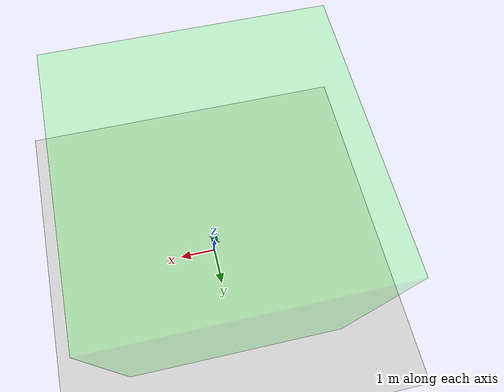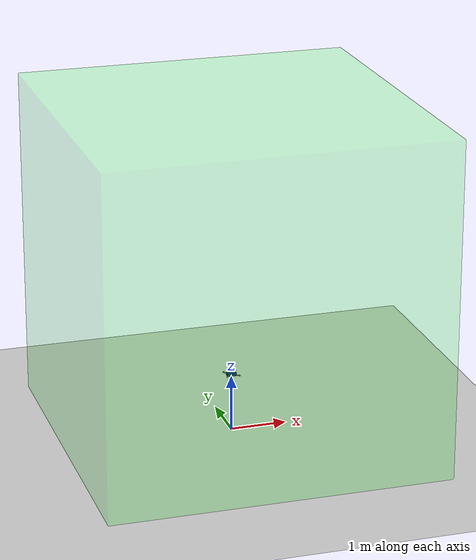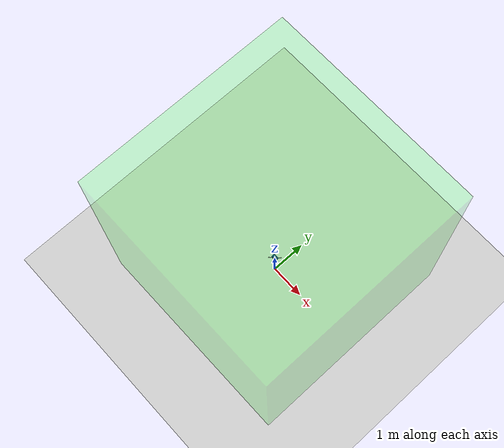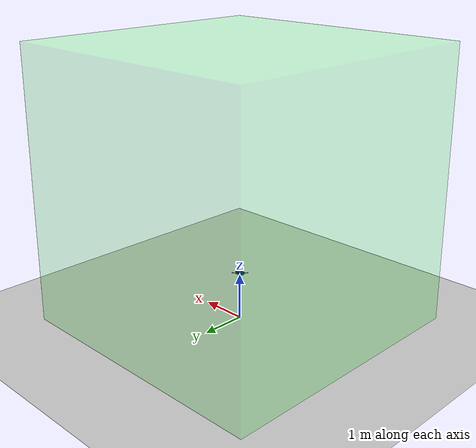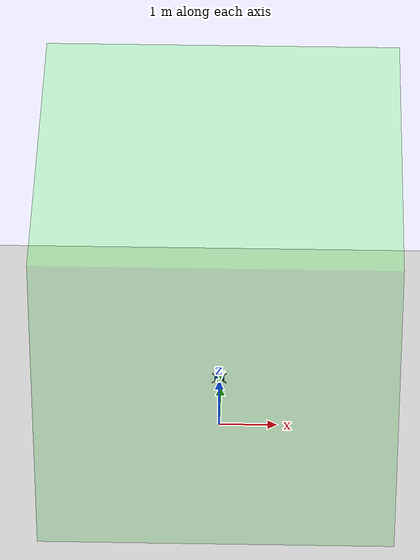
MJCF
<mujoco model="quadrotor_white_falcon">

    <compiler angle="degree" coordinate="local"/>
    <option timestep="0.002" gravity="0 0 -9.81" density="1.225" viscosity="1.789e-5" integrator="RK4" />  wind="10 0 0"
    <default>
        <geom contype="0" conaffinity="0" condim="1" solref="0.001 1" density="0"/>
        <default class="collision">
            <geom group="2" contype="1" type="box" density="0" />
        </default>
    </default>
    <asset>
        <texture builtin="gradient" height="100" width="100" rgb1="0.6 0.8 1.0" rgb2="1 1 1" type="skybox"/>
        <texture name="texplane" builtin="checker" height="100" width="100" rgb1="0.7 0.8 1.0" rgb2="1 1 1" type="2d"/>
        <material name="matplane" texture="texplane" texrepeat="10 10" reflectance="0.2" shininess="0.2" specular="0.5"/>
    </asset>

    <worldbody>
        <light cutoff="100" diffuse="1 1 1" dir="0 0 -1.3" directional="true" exponent="1" pos="0 0 10" specular=".1 .1 .1"/>
        <geom conaffinity="1" condim="3" material="matplane" name="floor" pos="0 0 -0.025" rgba="0.8 0.8 0.8 1" size="10 10 0.2" type="plane"/>
        <geom type="box" size="3 3 3" pos="0 0 2.94" rgba="0 1 0 0.05" conaffinity="0"/>

        <body name="quadrotor" pos="0 0 1.05">
            <freejoint/>
            <inertial pos="0 0 0" mass="0.835" diaginertia="0.0049 0.0053 0.0098" />
            <geom class="collision" type="box" pos="0 0 0" quat="1 0 0 0" size="0.08 0.05 0.025" rgba="0 0.15 0.47 1" />
            <site name="body_frame" pos="0 0 0" quat="1 0 0 0"/>

            <!-- Arms -->
            <geom type="box" pos="0.071 0.071 0.0" size="0.075 .005 .005" quat="0.924 0.0 0.0 0.383" rgba=".8 .8 .8 1" />
            <geom type="box" pos="0.071 -0.071 0.0" size="0.075 .005 .005" quat="0.383 0.0 0.0 0.924" rgba=".8 .8 .8 1" />
            <geom type="box" pos="-0.071 -0.071 0.0" size="0.075 .005 .005" quat="-0.383 0.0 0.0 0.924" rgba=".8 .8 .8 1" />
            <geom type="box" pos="-0.071 0.071 0.0" size="0.075 .005 .005" quat="0.924 0.0 0.0 -0.383" rgba=".8 .8 .8 1" />

            <!-- Motors -->
            <geom type="cylinder" pos="0.11059 0.11059 0.0125" size="0.05 0.0025" quat="1 0 0 0" rgba="1 0.67 0 0.5" />
            <site name="motor0" type="cylinder" pos="0.11059 0.11059 0.0125" size=".01 .0025" quat="1 0 0 0" rgba=".8 .8 .8 1" />

            <geom type="cylinder" pos="0.11059 -0.11059 0.0125" size="0.05 0.0025" quat="1 0 0 0" rgba="1 0.67 0 0.5" />
            <site name="motor1" type="cylinder" pos="0.11059 -0.11059 .0125" size="0.01 0.0025" quat="1 0 0 0" rgba=".8 .8 .8 1" />

            <geom type="cylinder" pos="-0.11059 -0.11059 0.0125" size="0.05 0.0025" quat="1 0 0 0" rgba="1 0.67 0 0.5" />
            <site name="motor2" type="cylinder" pos="-0.11059 -0.11059 .0125" size="0.01 0.0025" quat="1 0 0 0" rgba=".8 .8 .8 1" />

            <geom type="cylinder" pos="-0.11059 0.11059 0.0125" size="0.05 0.0025" quat="1 0 0 0" rgba="1 0.67 0 0.5" />
            <site name="motor3" type="cylinder" pos="-0.11059 0.11059 .0125" size="0.01 0.0025" quat="1 0 0 0" rgba=".8 .8 .8 1" />

            <body name="cable_root" pos="0 0 -0.025">
                <joint type="ball" name="cable_root_joint" damping="1e-5"/>
                <inertial pos="0 0 0" mass="1e-5" diaginertia="1e-5 1e-5 1e-5"/>
                <geom name="cable_geom" type="cylinder" size="0.005 0.5" pos="0 0 -0.5" rgba="0.9 0.7 0.2 1" class="collision"/>
                <body name="payload" pos="0 0 -1">
                    <joint name="payload_joint"/>
                    <geom type="sphere" size="0.025" rgba="1 0.02 0.54 1" mass="0.1" class="collision"/>
                </body>
            </body>
        </body>
    </worldbody>

    <actuator>
        <motor name="Motor0" ctrllimited="true" ctrlrange="0 14.981" gear="0  0. 1. 0. 0. -0.025" site="motor0" />
        <motor name="Motor1" ctrllimited="true" ctrlrange="0 14.981" gear="0  0. 1. 0. 0. 0.025" site="motor1" />
        <motor name="Motor2" ctrllimited="true" ctrlrange="0 14.981" gear="0  0. 1. 0. 0. -0.025" site="motor2" />
        <motor name="Motor3" ctrllimited="true" ctrlrange="0 14.981" gear="0  0. 1. 0. 0. 0.025" site="motor3" />
    </actuator>
</mujoco>
